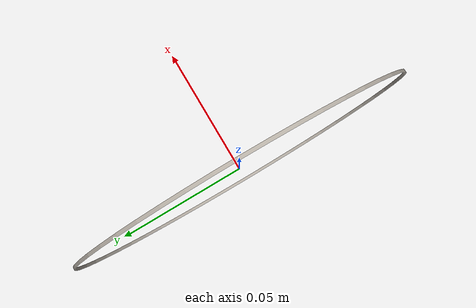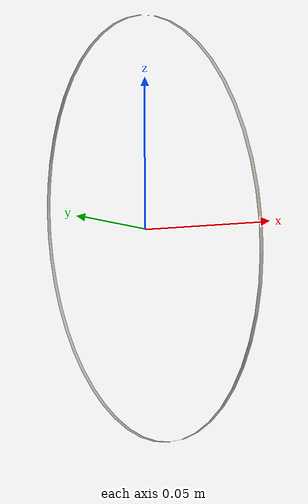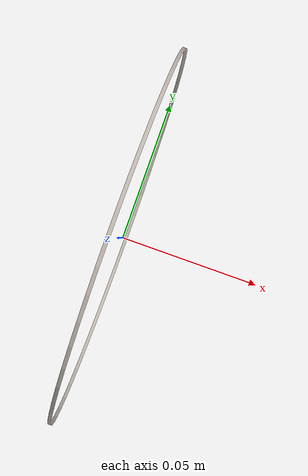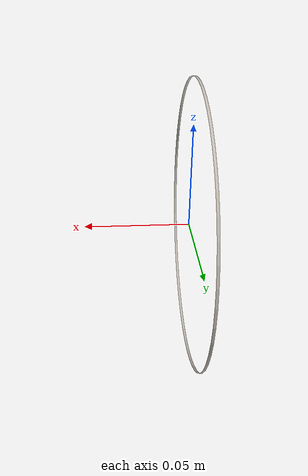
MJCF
<mujoco model="plate_6">
  <asset>
    <texture file="/home/abhiram03/Desktop/mimicgen/robosuite-kitchen/robosuite/models/assets/textures/ceramic.png" name="tex-plate_6" type="2d"/>
    <material name="plate_6" reflectance="0.5" texrepeat="1 1" texture="tex-plate_6" texuniform="false"/>
    <mesh file="visual/model_normalized_0.obj" name="model_normalized_0_vis" scale="0.14000000000000004 0.14000000000000004 0.14000000000000004" refquat="0.7071067811865475 0.0 0.7071067811865475 0.0"/>
    <mesh file="collision/model_normalized_collision_13.obj" name="model_normalized_collision_13._coll" scale="0.14000000000000004 0.14000000000000004 0.14000000000000004" refquat="0.7071067811865475 0.0 0.7071067811865475 0.0"/>
    <mesh file="collision/model_normalized_collision_15.obj" name="model_normalized_collision_15._coll" scale="0.14000000000000004 0.14000000000000004 0.14000000000000004" refquat="0.7071067811865475 0.0 0.7071067811865475 0.0"/>
    <mesh file="collision/model_normalized_collision_10.obj" name="model_normalized_collision_10._coll" scale="0.14000000000000004 0.14000000000000004 0.14000000000000004" refquat="0.7071067811865475 0.0 0.7071067811865475 0.0"/>
    <mesh file="collision/model_normalized_collision_26.obj" name="model_normalized_collision_26._coll" scale="0.14000000000000004 0.14000000000000004 0.14000000000000004" refquat="0.7071067811865475 0.0 0.7071067811865475 0.0"/>
    <mesh file="collision/model_normalized_collision_25.obj" name="model_normalized_collision_25._coll" scale="0.14000000000000004 0.14000000000000004 0.14000000000000004" refquat="0.7071067811865475 0.0 0.7071067811865475 0.0"/>
    <mesh file="collision/model_normalized_collision_5.obj" name="model_normalized_collision_5._coll" scale="0.14000000000000004 0.14000000000000004 0.14000000000000004" refquat="0.7071067811865475 0.0 0.7071067811865475 0.0"/>
    <mesh file="collision/model_normalized_collision_31.obj" name="model_normalized_collision_31._coll" scale="0.14000000000000004 0.14000000000000004 0.14000000000000004" refquat="0.7071067811865475 0.0 0.7071067811865475 0.0"/>
    <mesh file="collision/model_normalized_collision_3.obj" name="model_normalized_collision_3._coll" scale="0.14000000000000004 0.14000000000000004 0.14000000000000004" refquat="0.7071067811865475 0.0 0.7071067811865475 0.0"/>
    <mesh file="collision/model_normalized_collision_14.obj" name="model_normalized_collision_14._coll" scale="0.14000000000000004 0.14000000000000004 0.14000000000000004" refquat="0.7071067811865475 0.0 0.7071067811865475 0.0"/>
    <mesh file="collision/model_normalized_collision_28.obj" name="model_normalized_collision_28._coll" scale="0.14000000000000004 0.14000000000000004 0.14000000000000004" refquat="0.7071067811865475 0.0 0.7071067811865475 0.0"/>
    <mesh file="collision/model_normalized_collision_11.obj" name="model_normalized_collision_11._coll" scale="0.14000000000000004 0.14000000000000004 0.14000000000000004" refquat="0.7071067811865475 0.0 0.7071067811865475 0.0"/>
    <mesh file="collision/model_normalized_collision_29.obj" name="model_normalized_collision_29._coll" scale="0.14000000000000004 0.14000000000000004 0.14000000000000004" refquat="0.7071067811865475 0.0 0.7071067811865475 0.0"/>
    <mesh file="collision/model_normalized_collision_24.obj" name="model_normalized_collision_24._coll" scale="0.14000000000000004 0.14000000000000004 0.14000000000000004" refquat="0.7071067811865475 0.0 0.7071067811865475 0.0"/>
    <mesh file="collision/model_normalized_collision_1.obj" name="model_normalized_collision_1._coll" scale="0.14000000000000004 0.14000000000000004 0.14000000000000004" refquat="0.7071067811865475 0.0 0.7071067811865475 0.0"/>
    <mesh file="collision/model_normalized_collision_0.obj" name="model_normalized_collision_0._coll" scale="0.14000000000000004 0.14000000000000004 0.14000000000000004" refquat="0.7071067811865475 0.0 0.7071067811865475 0.0"/>
    <mesh file="collision/model_normalized_collision_27.obj" name="model_normalized_collision_27._coll" scale="0.14000000000000004 0.14000000000000004 0.14000000000000004" refquat="0.7071067811865475 0.0 0.7071067811865475 0.0"/>
    <mesh file="collision/model_normalized_collision_9.obj" name="model_normalized_collision_9._coll" scale="0.14000000000000004 0.14000000000000004 0.14000000000000004" refquat="0.7071067811865475 0.0 0.7071067811865475 0.0"/>
    <mesh file="collision/model_normalized_collision_19.obj" name="model_normalized_collision_19._coll" scale="0.14000000000000004 0.14000000000000004 0.14000000000000004" refquat="0.7071067811865475 0.0 0.7071067811865475 0.0"/>
    <mesh file="collision/model_normalized_collision_21.obj" name="model_normalized_collision_21._coll" scale="0.14000000000000004 0.14000000000000004 0.14000000000000004" refquat="0.7071067811865475 0.0 0.7071067811865475 0.0"/>
    <mesh file="collision/model_normalized_collision_30.obj" name="model_normalized_collision_30._coll" scale="0.14000000000000004 0.14000000000000004 0.14000000000000004" refquat="0.7071067811865475 0.0 0.7071067811865475 0.0"/>
    <mesh file="collision/model_normalized_collision_20.obj" name="model_normalized_collision_20._coll" scale="0.14000000000000004 0.14000000000000004 0.14000000000000004" refquat="0.7071067811865475 0.0 0.7071067811865475 0.0"/>
    <mesh file="collision/model_normalized_collision_2.obj" name="model_normalized_collision_2._coll" scale="0.14000000000000004 0.14000000000000004 0.14000000000000004" refquat="0.7071067811865475 0.0 0.7071067811865475 0.0"/>
    <mesh file="collision/model_normalized_collision_7.obj" name="model_normalized_collision_7._coll" scale="0.14000000000000004 0.14000000000000004 0.14000000000000004" refquat="0.7071067811865475 0.0 0.7071067811865475 0.0"/>
    <mesh file="collision/model_normalized_collision_22.obj" name="model_normalized_collision_22._coll" scale="0.14000000000000004 0.14000000000000004 0.14000000000000004" refquat="0.7071067811865475 0.0 0.7071067811865475 0.0"/>
    <mesh file="collision/model_normalized_collision_16.obj" name="model_normalized_collision_16._coll" scale="0.14000000000000004 0.14000000000000004 0.14000000000000004" refquat="0.7071067811865475 0.0 0.7071067811865475 0.0"/>
    <mesh file="collision/model_normalized_collision_8.obj" name="model_normalized_collision_8._coll" scale="0.14000000000000004 0.14000000000000004 0.14000000000000004" refquat="0.7071067811865475 0.0 0.7071067811865475 0.0"/>
    <mesh file="collision/model_normalized_collision_6.obj" name="model_normalized_collision_6._coll" scale="0.14000000000000004 0.14000000000000004 0.14000000000000004" refquat="0.7071067811865475 0.0 0.7071067811865475 0.0"/>
    <mesh file="collision/model_normalized_collision_18.obj" name="model_normalized_collision_18._coll" scale="0.14000000000000004 0.14000000000000004 0.14000000000000004" refquat="0.7071067811865475 0.0 0.7071067811865475 0.0"/>
    <mesh file="collision/model_normalized_collision_17.obj" name="model_normalized_collision_17._coll" scale="0.14000000000000004 0.14000000000000004 0.14000000000000004" refquat="0.7071067811865475 0.0 0.7071067811865475 0.0"/>
    <mesh file="collision/model_normalized_collision_12.obj" name="model_normalized_collision_12._coll" scale="0.14000000000000004 0.14000000000000004 0.14000000000000004" refquat="0.7071067811865475 0.0 0.7071067811865475 0.0"/>
    <mesh file="collision/model_normalized_collision_4.obj" name="model_normalized_collision_4._coll" scale="0.14000000000000004 0.14000000000000004 0.14000000000000004" refquat="0.7071067811865475 0.0 0.7071067811865475 0.0"/>
    <mesh file="collision/model_normalized_collision_23.obj" name="model_normalized_collision_23._coll" scale="0.14000000000000004 0.14000000000000004 0.14000000000000004" refquat="0.7071067811865475 0.0 0.7071067811865475 0.0"/>
    <texture type="2d" name="8e7f1263823c_plate__3d_asset_0_g_texture_kd" file="visual/8e7f1263823c_plate__3d_asset_0_g_texture_kd.png"/>
    <material name="Material_0" texture="8e7f1263823c_plate__3d_asset_0_g_texture_kd" specular="0.5" shininess="0.5"/>
  </asset>
  <worldbody>
    <body>
      <body name="object">
        <geom solimp="0.998 0.998 0.001" solref="0.001 1" density="100" friction="0.95 0.3 0.1" type="mesh" mesh="model_normalized_0_vis" conaffinity="0" contype="0" group="1" material="Material_0"/>
        <geom solimp="0.998 0.998 0.001" solref="0.001 1" density="100" friction="0.95 0.3 0.1" type="mesh" mesh="model_normalized_collision_13._coll" group="0" rgba="0.8 0.8 0.8 0.0"/>
        <geom solimp="0.998 0.998 0.001" solref="0.001 1" density="100" friction="0.95 0.3 0.1" type="mesh" mesh="model_normalized_collision_15._coll" group="0" rgba="0.8 0.8 0.8 0.0"/>
        <geom solimp="0.998 0.998 0.001" solref="0.001 1" density="100" friction="0.95 0.3 0.1" type="mesh" mesh="model_normalized_collision_10._coll" group="0" rgba="0.8 0.8 0.8 0.0"/>
        <geom solimp="0.998 0.998 0.001" solref="0.001 1" density="100" friction="0.95 0.3 0.1" type="mesh" mesh="model_normalized_collision_26._coll" group="0" rgba="0.8 0.8 0.8 0.0"/>
        <geom solimp="0.998 0.998 0.001" solref="0.001 1" density="100" friction="0.95 0.3 0.1" type="mesh" mesh="model_normalized_collision_25._coll" group="0" rgba="0.8 0.8 0.8 0.0"/>
        <geom solimp="0.998 0.998 0.001" solref="0.001 1" density="100" friction="0.95 0.3 0.1" type="mesh" mesh="model_normalized_collision_5._coll" group="0" rgba="0.8 0.8 0.8 0.0"/>
        <geom solimp="0.998 0.998 0.001" solref="0.001 1" density="100" friction="0.95 0.3 0.1" type="mesh" mesh="model_normalized_collision_31._coll" group="0" rgba="0.8 0.8 0.8 0.0"/>
        <geom solimp="0.998 0.998 0.001" solref="0.001 1" density="100" friction="0.95 0.3 0.1" type="mesh" mesh="model_normalized_collision_3._coll" group="0" rgba="0.8 0.8 0.8 0.0"/>
        <geom solimp="0.998 0.998 0.001" solref="0.001 1" density="100" friction="0.95 0.3 0.1" type="mesh" mesh="model_normalized_collision_14._coll" group="0" rgba="0.8 0.8 0.8 0.0"/>
        <geom solimp="0.998 0.998 0.001" solref="0.001 1" density="100" friction="0.95 0.3 0.1" type="mesh" mesh="model_normalized_collision_28._coll" group="0" rgba="0.8 0.8 0.8 0.0"/>
        <geom solimp="0.998 0.998 0.001" solref="0.001 1" density="100" friction="0.95 0.3 0.1" type="mesh" mesh="model_normalized_collision_11._coll" group="0" rgba="0.8 0.8 0.8 0.0"/>
        <geom solimp="0.998 0.998 0.001" solref="0.001 1" density="100" friction="0.95 0.3 0.1" type="mesh" mesh="model_normalized_collision_29._coll" group="0" rgba="0.8 0.8 0.8 0.0"/>
        <geom solimp="0.998 0.998 0.001" solref="0.001 1" density="100" friction="0.95 0.3 0.1" type="mesh" mesh="model_normalized_collision_24._coll" group="0" rgba="0.8 0.8 0.8 0.0"/>
        <geom solimp="0.998 0.998 0.001" solref="0.001 1" density="100" friction="0.95 0.3 0.1" type="mesh" mesh="model_normalized_collision_1._coll" group="0" rgba="0.8 0.8 0.8 0.0"/>
        <geom solimp="0.998 0.998 0.001" solref="0.001 1" density="100" friction="0.95 0.3 0.1" type="mesh" mesh="model_normalized_collision_0._coll" group="0" rgba="0.8 0.8 0.8 0.0"/>
        <geom solimp="0.998 0.998 0.001" solref="0.001 1" density="100" friction="0.95 0.3 0.1" type="mesh" mesh="model_normalized_collision_27._coll" group="0" rgba="0.8 0.8 0.8 0.0"/>
        <geom solimp="0.998 0.998 0.001" solref="0.001 1" density="100" friction="0.95 0.3 0.1" type="mesh" mesh="model_normalized_collision_9._coll" group="0" rgba="0.8 0.8 0.8 0.0"/>
        <geom solimp="0.998 0.998 0.001" solref="0.001 1" density="100" friction="0.95 0.3 0.1" type="mesh" mesh="model_normalized_collision_19._coll" group="0" rgba="0.8 0.8 0.8 0.0"/>
        <geom solimp="0.998 0.998 0.001" solref="0.001 1" density="100" friction="0.95 0.3 0.1" type="mesh" mesh="model_normalized_collision_21._coll" group="0" rgba="0.8 0.8 0.8 0.0"/>
        <geom solimp="0.998 0.998 0.001" solref="0.001 1" density="100" friction="0.95 0.3 0.1" type="mesh" mesh="model_normalized_collision_30._coll" group="0" rgba="0.8 0.8 0.8 0.0"/>
        <geom solimp="0.998 0.998 0.001" solref="0.001 1" density="100" friction="0.95 0.3 0.1" type="mesh" mesh="model_normalized_collision_20._coll" group="0" rgba="0.8 0.8 0.8 0.0"/>
        <geom solimp="0.998 0.998 0.001" solref="0.001 1" density="100" friction="0.95 0.3 0.1" type="mesh" mesh="model_normalized_collision_2._coll" group="0" rgba="0.8 0.8 0.8 0.0"/>
        <geom solimp="0.998 0.998 0.001" solref="0.001 1" density="100" friction="0.95 0.3 0.1" type="mesh" mesh="model_normalized_collision_7._coll" group="0" rgba="0.8 0.8 0.8 0.0"/>
        <geom solimp="0.998 0.998 0.001" solref="0.001 1" density="100" friction="0.95 0.3 0.1" type="mesh" mesh="model_normalized_collision_22._coll" group="0" rgba="0.8 0.8 0.8 0.0"/>
        <geom solimp="0.998 0.998 0.001" solref="0.001 1" density="100" friction="0.95 0.3 0.1" type="mesh" mesh="model_normalized_collision_16._coll" group="0" rgba="0.8 0.8 0.8 0.0"/>
        <geom solimp="0.998 0.998 0.001" solref="0.001 1" density="100" friction="0.95 0.3 0.1" type="mesh" mesh="model_normalized_collision_8._coll" group="0" rgba="0.8 0.8 0.8 0.0"/>
        <geom solimp="0.998 0.998 0.001" solref="0.001 1" density="100" friction="0.95 0.3 0.1" type="mesh" mesh="model_normalized_collision_6._coll" group="0" rgba="0.8 0.8 0.8 0.0"/>
        <geom solimp="0.998 0.998 0.001" solref="0.001 1" density="100" friction="0.95 0.3 0.1" type="mesh" mesh="model_normalized_collision_18._coll" group="0" rgba="0.8 0.8 0.8 0.0"/>
        <geom solimp="0.998 0.998 0.001" solref="0.001 1" density="100" friction="0.95 0.3 0.1" type="mesh" mesh="model_normalized_collision_17._coll" group="0" rgba="0.8 0.8 0.8 0.0"/>
        <geom solimp="0.998 0.998 0.001" solref="0.001 1" density="100" friction="0.95 0.3 0.1" type="mesh" mesh="model_normalized_collision_12._coll" group="0" rgba="0.8 0.8 0.8 0.0"/>
        <geom solimp="0.998 0.998 0.001" solref="0.001 1" density="100" friction="0.95 0.3 0.1" type="mesh" mesh="model_normalized_collision_4._coll" group="0" rgba="0.8 0.8 0.8 0.0"/>
        <geom solimp="0.998 0.998 0.001" solref="0.001 1" density="100" friction="0.95 0.3 0.1" type="mesh" mesh="model_normalized_collision_23._coll" group="0" rgba="0.8 0.8 0.8 0.0"/>
      </body>
      <site rgba="0 0 0 0" size="0.005" pos="-0.0004827906999999988 -1.3999999992631021e-09 -0.0044019164000000015" name="bottom_site"/>
      <site rgba="0 0 0 0" size="0.005" pos="-0.0004827906999999988 -1.3999999992631021e-09 0.004082932000000002" name="top_site"/>
      <site rgba="0 0 0 0" size="0.005" pos="0.07057781500000003 0.07106060500000003 -0.00015949220000000002" name="horizontal_radius_site"/>
    </body>
  </worldbody>
</mujoco>
